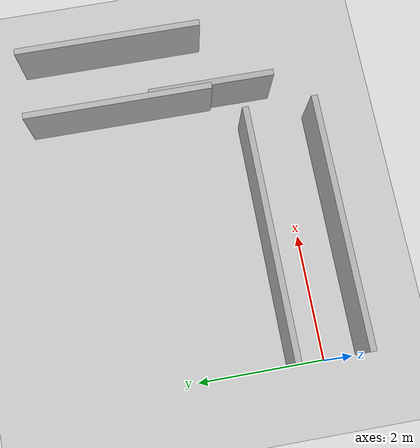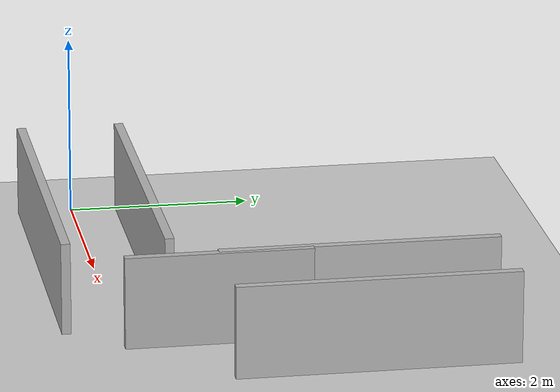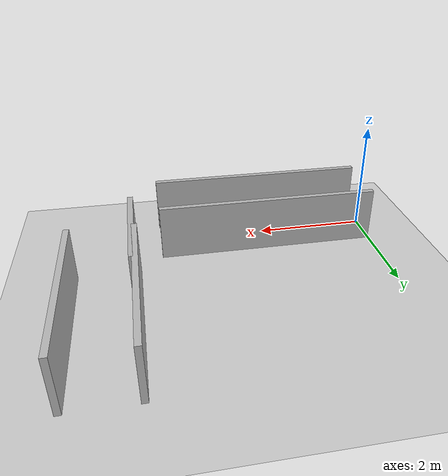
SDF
<?xml version="1.0" ?>
<sdf version="1.9">
  <world name="maze_simple_world">

    <!-- Physics & gravity     -->
    <gravity>0 0 -9.81</gravity>

    <physics name="default_physics" type="ode">
      <max_step_size>0.001</max_step_size>
      <real_time_factor>1</real_time_factor>
    </physics>

    <!-- Lighting              -->
    <include>
      <uri>https://fuel.gazebosim.org/1.0/OpenRobotics/models/Sun</uri>
    </include>

    <!-- Ground plane          -->
    <include>
      <uri>https://fuel.gazebosim.org/1.0/OpenRobotics/models/Ground Plane</uri>
    </include>

    <!-- Maze walls (all static)                               -->
    <!-- Corridor width: 1.0 m                                 -->
    <!-- Wall thickness: 0.1 m                                 -->
    <!-- Wall height: 1.0 m                                    -->

    <!-- ===== Corridor 1 (straight, +X) ===== -->
    <!-- Left wall -->
    <model name="wall_1_left">
      <static>true</static>
      <pose>2 0.55 0.5 0 0 0</pose>
      <link name="link">
        <collision name="collision">
          <geometry>
            <box><size>4 0.1 1.0</size></box>
          </geometry>
        </collision>
        <visual name="visual">
          <geometry>
            <box><size>4 0.1 1.0</size></box>
          </geometry>
          <material>
            <ambient>0.7 0.7 0.7 1</ambient>
            <diffuse>0.7 0.7 0.7 1</diffuse>
          </material>
        </visual>
      </link>
    </model>

    <!-- Right wall -->
    <model name="wall_1_right">
      <static>true</static>
      <pose>2 -0.55 0.5 0 0 0</pose>
      <link name="link">
        <collision name="collision">
          <geometry>
            <box><size>4 0.1 1.0</size></box>
          </geometry>
        </collision>
        <visual name="visual">
          <geometry>
            <box><size>4 0.1 1.0</size></box>
          </geometry>
          <material>
            <ambient>0.7 0.7 0.7 1</ambient>
            <diffuse>0.7 0.7 0.7 1</diffuse>
          </material>
        </visual>
      </link>
    </model>

    <!-- ===== Turn 1 (left) ===== -->
    <model name="wall_2">
      <static>true</static>
      <pose>4.5 1.0 0.5 0 0 1.5708</pose>
      <link name="link">
        <collision name="collision">
          <geometry>
            <box><size>2 0.1 1.0</size></box>
          </geometry>
        </collision>
        <visual name="visual">
          <geometry>
            <box><size>2 0.1 1.0</size></box>
          </geometry>
          <material>
            <ambient>0.7 0.7 0.7 1</ambient>
            <diffuse>0.7 0.7 0.7 1</diffuse>
          </material>
        </visual>
      </link>
    </model>

    <!-- ===== Corridor 2 ===== -->
    <model name="wall_3_left">
      <static>true</static>
      <pose>5.55 2.5 0.5 0 0 1.5708</pose>
      <link name="link">
        <collision name="collision">
          <geometry>
            <box><size>3 0.1 1.0</size></box>
          </geometry>
        </collision>
        <visual name="visual">
          <geometry>
            <box><size>3 0.1 1.0</size></box>
          </geometry>
        </visual>
      </link>
    </model>

    <model name="wall_3_right">
      <static>true</static>
      <pose>4.45 2.5 0.5 0 0 1.5708</pose>
      <link name="link">
        <collision name="collision">
          <geometry>
            <box><size>3 0.1 1.0</size></box>
          </geometry>
        </collision>
        <visual name="visual">
          <geometry>
            <box><size>3 0.1 1.0</size></box>
          </geometry>
        </visual>
      </link>
    </model>

  </world>
</sdf>
